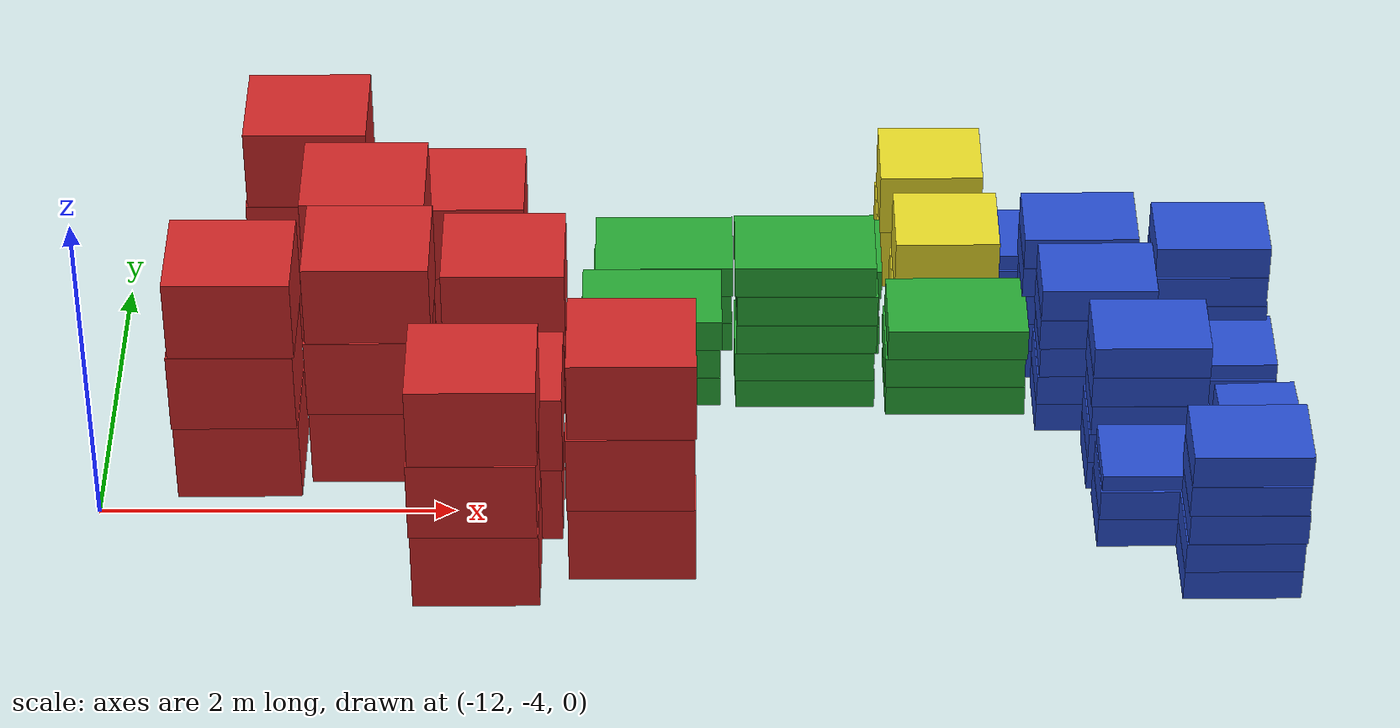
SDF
<sdf version="1.4">
 <model name="factory_baggage_group_B">
  <model name="baggage_A_x3_14">
   <model name="baggage_A_0">
    <static>1</static>
    <link name="link">
     <collision name="collision"><geometry><box><size>0.7 0.6 0.5</size></box></geometry></collision>
     <visual name="visual">
      <geometry><box><size>0.7 0.6 0.5</size></box></geometry>
      <material>
       <script><uri>file://media/materials/scripts/gazebo.material</uri><name>Gazebo/Red</name></script>
      </material>
     </visual>
    </link>
    <pose>0 0 0.25 0 -0 0</pose>
   </model>
   <model name="baggage_A_1">
    <static>1</static>
    <link name="link">
     <collision name="collision"><geometry><box><size>0.7 0.6 0.5</size></box></geometry></collision>
     <visual name="visual">
      <geometry><box><size>0.7 0.6 0.5</size></box></geometry>
      <material>
       <script><uri>file://media/materials/scripts/gazebo.material</uri><name>Gazebo/Red</name></script>
      </material>
     </visual>
    </link>
    <pose>-0.006 -0.0077 0.75 0 -0 0</pose>
   </model>
   <model name="baggage_A_2">
    <static>1</static>
    <link name="link">
     <collision name="collision"><geometry><box><size>0.7 0.6 0.5</size></box></geometry></collision>
     <visual name="visual">
      <geometry><box><size>0.7 0.6 0.5</size></box></geometry>
      <material>
       <script><uri>file://media/materials/scripts/gazebo.material</uri><name>Gazebo/Red</name></script>
      </material>
     </visual>
    </link>
    <pose>0.0045 0.0005 1.25 0 -0 0</pose>
   </model>
   <pose>-11.2173 -3.57429 0 0 -0 0</pose>
  </model>
  <model name="baggage_A_x3_15">
   <model name="baggage_A_0">
    <static>1</static>
    <link name="link">
     <collision name="collision"><geometry><box><size>0.7 0.6 0.5</size></box></geometry></collision>
     <visual name="visual">
      <geometry><box><size>0.7 0.6 0.5</size></box></geometry>
      <material>
       <script><uri>file://media/materials/scripts/gazebo.material</uri><name>Gazebo/Red</name></script>
      </material>
     </visual>
    </link>
    <pose>0 0 0.25 0 -0 0</pose>
   </model>
   <model name="baggage_A_1">
    <static>1</static>
    <link name="link">
     <collision name="collision"><geometry><box><size>0.7 0.6 0.5</size></box></geometry></collision>
     <visual name="visual">
      <geometry><box><size>0.7 0.6 0.5</size></box></geometry>
      <material>
       <script><uri>file://media/materials/scripts/gazebo.material</uri><name>Gazebo/Red</name></script>
      </material>
     </visual>
    </link>
    <pose>-0.006 -0.0077 0.75 0 -0 0</pose>
   </model>
   <model name="baggage_A_2">
    <static>1</static>
    <link name="link">
     <collision name="collision"><geometry><box><size>0.7 0.6 0.5</size></box></geometry></collision>
     <visual name="visual">
      <geometry><box><size>0.7 0.6 0.5</size></box></geometry>
      <material>
       <script><uri>file://media/materials/scripts/gazebo.material</uri><name>Gazebo/Red</name></script>
      </material>
     </visual>
    </link>
    <pose>0.0045 0.0005 1.25 0 -0 0</pose>
   </model>
   <pose>-10.4661 -3.4462 0 0 -0 0</pose>
  </model>
  <model name="baggage_A_x3_16">
   <model name="baggage_A_0">
    <static>1</static>
    <link name="link">
     <collision name="collision"><geometry><box><size>0.7 0.6 0.5</size></box></geometry></collision>
     <visual name="visual">
      <geometry><box><size>0.7 0.6 0.5</size></box></geometry>
      <material>
       <script><uri>file://media/materials/scripts/gazebo.material</uri><name>Gazebo/Red</name></script>
      </material>
     </visual>
    </link>
    <pose>0 0 0.25 0 -0 0</pose>
   </model>
   <model name="baggage_A_1">
    <static>1</static>
    <link name="link">
     <collision name="collision"><geometry><box><size>0.7 0.6 0.5</size></box></geometry></collision>
     <visual name="visual">
      <geometry><box><size>0.7 0.6 0.5</size></box></geometry>
      <material>
       <script><uri>file://media/materials/scripts/gazebo.material</uri><name>Gazebo/Red</name></script>
      </material>
     </visual>
    </link>
    <pose>-0.006 -0.0077 0.75 0 -0 0</pose>
   </model>
   <model name="baggage_A_2">
    <static>1</static>
    <link name="link">
     <collision name="collision"><geometry><box><size>0.7 0.6 0.5</size></box></geometry></collision>
     <visual name="visual">
      <geometry><box><size>0.7 0.6 0.5</size></box></geometry>
      <material>
       <script><uri>file://media/materials/scripts/gazebo.material</uri><name>Gazebo/Red</name></script>
      </material>
     </visual>
    </link>
    <pose>0.0045 0.0005 1.25 0 -0 0</pose>
   </model>
   <pose>-10.5135 -2.84667 0 0 -0 0</pose>
  </model>
  <model name="baggage_A_x3_17">
   <model name="baggage_A_0">
    <static>1</static>
    <link name="link">
     <collision name="collision"><geometry><box><size>0.7 0.6 0.5</size></box></geometry></collision>
     <visual name="visual">
      <geometry><box><size>0.7 0.6 0.5</size></box></geometry>
      <material>
       <script><uri>file://media/materials/scripts/gazebo.material</uri><name>Gazebo/Red</name></script>
      </material>
     </visual>
    </link>
    <pose>0 0 0.25 0 -0 0</pose>
   </model>
   <model name="baggage_A_1">
    <static>1</static>
    <link name="link">
     <collision name="collision"><geometry><box><size>0.7 0.6 0.5</size></box></geometry></collision>
     <visual name="visual">
      <geometry><box><size>0.7 0.6 0.5</size></box></geometry>
      <material>
       <script><uri>file://media/materials/scripts/gazebo.material</uri><name>Gazebo/Red</name></script>
      </material>
     </visual>
    </link>
    <pose>-0.006 -0.0077 0.75 0 -0 0</pose>
   </model>
   <model name="baggage_A_2">
    <static>1</static>
    <link name="link">
     <collision name="collision"><geometry><box><size>0.7 0.6 0.5</size></box></geometry></collision>
     <visual name="visual">
      <geometry><box><size>0.7 0.6 0.5</size></box></geometry>
      <material>
       <script><uri>file://media/materials/scripts/gazebo.material</uri><name>Gazebo/Red</name></script>
      </material>
     </visual>
    </link>
    <pose>0.0045 0.0005 1.25 0 -0 0</pose>
   </model>
   <pose>-10.8736 -2.1815 0 0 -0 0</pose>
  </model>
  <model name="baggage_A_x2_15">
   <model name="baggage_A_0">
    <static>1</static>
    <link name="link">
     <collision name="collision"><geometry><box><size>0.7 0.6 0.5</size></box></geometry></collision>
     <visual name="visual">
      <geometry><box><size>0.7 0.6 0.5</size></box></geometry>
      <material>
       <script><uri>file://media/materials/scripts/gazebo.material</uri><name>Gazebo/Red</name></script>
      </material>
     </visual>
    </link>
    <pose>0 0 0.25 0 -0 0</pose>
   </model>
   <model name="baggage_A_1">
    <static>1</static>
    <link name="link">
     <collision name="collision"><geometry><box><size>0.7 0.6 0.5</size></box></geometry></collision>
     <visual name="visual">
      <geometry><box><size>0.7 0.6 0.5</size></box></geometry>
      <material>
       <script><uri>file://media/materials/scripts/gazebo.material</uri><name>Gazebo/Red</name></script>
      </material>
     </visual>
    </link>
    <pose>0.0063 -0.0062 0.75 0 -0 0</pose>
   </model>
   <pose>-9.74487 -2.84389 0 0 -0 0</pose>
  </model>
  <model name="baggage_A_x2_16">
   <model name="baggage_A_0">
    <static>1</static>
    <link name="link">
     <collision name="collision"><geometry><box><size>0.7 0.6 0.5</size></box></geometry></collision>
     <visual name="visual">
      <geometry><box><size>0.7 0.6 0.5</size></box></geometry>
      <material>
       <script><uri>file://media/materials/scripts/gazebo.material</uri><name>Gazebo/Red</name></script>
      </material>
     </visual>
    </link>
    <pose>0 0 0.25 0 -0 0</pose>
   </model>
   <model name="baggage_A_1">
    <static>1</static>
    <link name="link">
     <collision name="collision"><geometry><box><size>0.7 0.6 0.5</size></box></geometry></collision>
     <visual name="visual">
      <geometry><box><size>0.7 0.6 0.5</size></box></geometry>
      <material>
       <script><uri>file://media/materials/scripts/gazebo.material</uri><name>Gazebo/Red</name></script>
      </material>
     </visual>
    </link>
    <pose>0.0063 -0.0062 0.75 0 -0 0</pose>
   </model>
   <pose>-9.98737 -2.21622 0 0 -0 0</pose>
  </model>
  <model name="baggage_D_x3_15">
   <model name="baggage_D_0">
    <static>1</static>
    <link name="link">
     <collision name="collision"><geometry><box><size>0.8 0.5 0.2</size></box></geometry></collision>
     <visual name="visual">
      <geometry><box><size>0.8 0.5 0.2</size></box></geometry>
      <material>
       <script><uri>file://media/materials/scripts/gazebo.material</uri><name>Gazebo/Green</name></script>
      </material>
     </visual>
    </link>
    <pose>0 0 0.1 0 -0 0</pose>
   </model>
   <model name="baggage_D_1">
    <static>1</static>
    <link name="link">
     <collision name="collision"><geometry><box><size>0.8 0.5 0.2</size></box></geometry></collision>
     <visual name="visual">
      <geometry><box><size>0.8 0.5 0.2</size></box></geometry>
      <material>
       <script><uri>file://media/materials/scripts/gazebo.material</uri><name>Gazebo/Green</name></script>
      </material>
     </visual>
    </link>
    <pose>-0.0056 0.0083 0.3 0 -0 0</pose>
   </model>
   <model name="baggage_D_2">
    <static>1</static>
    <link name="link">
     <collision name="collision"><geometry><box><size>0.8 0.5 0.2</size></box></geometry></collision>
     <visual name="visual">
      <geometry><box><size>0.8 0.5 0.2</size></box></geometry>
      <material>
       <script><uri>file://media/materials/scripts/gazebo.material</uri><name>Gazebo/Green</name></script>
      </material>
     </visual>
    </link>
    <pose>0.0053 0.0057 0.5 0 -0 0</pose>
   </model>
   <pose>-8.83234 -2.31719 0 0 -0 0</pose>
  </model>
  <model name="baggage_D_x3_16">
   <model name="baggage_D_0">
    <static>1</static>
    <link name="link">
     <collision name="collision"><geometry><box><size>0.8 0.5 0.2</size></box></geometry></collision>
     <visual name="visual">
      <geometry><box><size>0.8 0.5 0.2</size></box></geometry>
      <material>
       <script><uri>file://media/materials/scripts/gazebo.material</uri><name>Gazebo/Green</name></script>
      </material>
     </visual>
    </link>
    <pose>0 0 0.1 0 -0 0</pose>
   </model>
   <model name="baggage_D_1">
    <static>1</static>
    <link name="link">
     <collision name="collision"><geometry><box><size>0.8 0.5 0.2</size></box></geometry></collision>
     <visual name="visual">
      <geometry><box><size>0.8 0.5 0.2</size></box></geometry>
      <material>
       <script><uri>file://media/materials/scripts/gazebo.material</uri><name>Gazebo/Green</name></script>
      </material>
     </visual>
    </link>
    <pose>-0.0056 0.0083 0.3 0 -0 0</pose>
   </model>
   <model name="baggage_D_2">
    <static>1</static>
    <link name="link">
     <collision name="collision"><geometry><box><size>0.8 0.5 0.2</size></box></geometry></collision>
     <visual name="visual">
      <geometry><box><size>0.8 0.5 0.2</size></box></geometry>
      <material>
       <script><uri>file://media/materials/scripts/gazebo.material</uri><name>Gazebo/Green</name></script>
      </material>
     </visual>
    </link>
    <pose>0.0053 0.0057 0.5 0 -0 0</pose>
   </model>
   <pose>-8.90179 -2.8215 0 0 -0 0</pose>
  </model>
  <model name="baggage_D_x3_17">
   <model name="baggage_D_0">
    <static>1</static>
    <link name="link">
     <collision name="collision"><geometry><box><size>0.8 0.5 0.2</size></box></geometry></collision>
     <visual name="visual">
      <geometry><box><size>0.8 0.5 0.2</size></box></geometry>
      <material>
       <script><uri>file://media/materials/scripts/gazebo.material</uri><name>Gazebo/Green</name></script>
      </material>
     </visual>
    </link>
    <pose>0 0 0.1 0 -0 0</pose>
   </model>
   <model name="baggage_D_1">
    <static>1</static>
    <link name="link">
     <collision name="collision"><geometry><box><size>0.8 0.5 0.2</size></box></geometry></collision>
     <visual name="visual">
      <geometry><box><size>0.8 0.5 0.2</size></box></geometry>
      <material>
       <script><uri>file://media/materials/scripts/gazebo.material</uri><name>Gazebo/Green</name></script>
      </material>
     </visual>
    </link>
    <pose>-0.0056 0.0083 0.3 0 -0 0</pose>
   </model>
   <model name="baggage_D_2">
    <static>1</static>
    <link name="link">
     <collision name="collision"><geometry><box><size>0.8 0.5 0.2</size></box></geometry></collision>
     <visual name="visual">
      <geometry><box><size>0.8 0.5 0.2</size></box></geometry>
      <material>
       <script><uri>file://media/materials/scripts/gazebo.material</uri><name>Gazebo/Green</name></script>
      </material>
     </visual>
    </link>
    <pose>0.0053 0.0057 0.5 0 -0 0</pose>
   </model>
   <pose>-7.97113 -2.34828 0 0 -0 0</pose>
  </model>
  <model name="baggage_D_x5_14">
   <model name="baggage_D_0">
    <static>1</static>
    <link name="link">
     <collision name="collision"><geometry><box><size>0.8 0.5 0.2</size></box></geometry></collision>
     <visual name="visual">
      <geometry><box><size>0.8 0.5 0.2</size></box></geometry>
      <material>
       <script><uri>file://media/materials/scripts/gazebo.material</uri><name>Gazebo/Green</name></script>
      </material>
     </visual>
    </link>
    <pose>0 0 0.1 0 -0 0</pose>
   </model>
   <model name="baggage_D_1">
    <static>1</static>
    <link name="link">
     <collision name="collision"><geometry><box><size>0.8 0.5 0.2</size></box></geometry></collision>
     <visual name="visual">
      <geometry><box><size>0.8 0.5 0.2</size></box></geometry>
      <material>
       <script><uri>file://media/materials/scripts/gazebo.material</uri><name>Gazebo/Green</name></script>
      </material>
     </visual>
    </link>
    <pose>-0.0065 -0.0092 0.3 0 -0 0</pose>
   </model>
   <model name="baggage_D_2">
    <static>1</static>
    <link name="link">
     <collision name="collision"><geometry><box><size>0.8 0.5 0.2</size></box></geometry></collision>
     <visual name="visual">
      <geometry><box><size>0.8 0.5 0.2</size></box></geometry>
      <material>
       <script><uri>file://media/materials/scripts/gazebo.material</uri><name>Gazebo/Green</name></script>
      </material>
     </visual>
    </link>
    <pose>0.005 -0.0052 0.5 0 -0 0</pose>
   </model>
   <model name="baggage_D_3">
    <static>1</static>
    <link name="link">
     <collision name="collision"><geometry><box><size>0.8 0.5 0.2</size></box></geometry></collision>
     <visual name="visual">
      <geometry><box><size>0.8 0.5 0.2</size></box></geometry>
      <material>
       <script><uri>file://media/materials/scripts/gazebo.material</uri><name>Gazebo/Green</name></script>
      </material>
     </visual>
    </link>
    <pose>0.0074 0.0002 0.7 0 -0 0</pose>
   </model>
   <model name="baggage_D_4">
    <static>1</static>
    <link name="link">
     <collision name="collision"><geometry><box><size>0.8 0.5 0.2</size></box></geometry></collision>
     <visual name="visual">
      <geometry><box><size>0.8 0.5 0.2</size></box></geometry>
      <material>
       <script><uri>file://media/materials/scripts/gazebo.material</uri><name>Gazebo/Green</name></script>
      </material>
     </visual>
    </link>
    <pose>-0.006 0.0081 0.9 0 -0 0</pose>
   </model>
   <pose>-8.01706 -2.8393 0 0 -0 0</pose>
  </model>
  <model name="baggage_D_x3_18">
   <model name="baggage_D_0">
    <static>1</static>
    <link name="link">
     <collision name="collision"><geometry><box><size>0.8 0.5 0.2</size></box></geometry></collision>
     <visual name="visual">
      <geometry><box><size>0.8 0.5 0.2</size></box></geometry>
      <material>
       <script><uri>file://media/materials/scripts/gazebo.material</uri><name>Gazebo/Green</name></script>
      </material>
     </visual>
    </link>
    <pose>0 0 0.1 0 -0 0</pose>
   </model>
   <model name="baggage_D_1">
    <static>1</static>
    <link name="link">
     <collision name="collision"><geometry><box><size>0.8 0.5 0.2</size></box></geometry></collision>
     <visual name="visual">
      <geometry><box><size>0.8 0.5 0.2</size></box></geometry>
      <material>
       <script><uri>file://media/materials/scripts/gazebo.material</uri><name>Gazebo/Green</name></script>
      </material>
     </visual>
    </link>
    <pose>-0.0056 0.0083 0.3 0 -0 0</pose>
   </model>
   <model name="baggage_D_2">
    <static>1</static>
    <link name="link">
     <collision name="collision"><geometry><box><size>0.8 0.5 0.2</size></box></geometry></collision>
     <visual name="visual">
      <geometry><box><size>0.8 0.5 0.2</size></box></geometry>
      <material>
       <script><uri>file://media/materials/scripts/gazebo.material</uri><name>Gazebo/Green</name></script>
      </material>
     </visual>
    </link>
    <pose>0.0053 0.0057 0.5 0 -0 0</pose>
   </model>
   <pose>-7.15437 -2.91181 0 0 -0 0</pose>
  </model>
  <model name="baggage_C_x2_26">
   <model name="baggage_C_0">
    <static>1</static>
    <link name="link">
     <collision name="collision"><geometry><box><size>0.6 0.5 0.4</size></box></geometry></collision>
     <visual name="visual">
      <geometry><box><size>0.6 0.5 0.4</size></box></geometry>
      <material>
       <script><uri>file://media/materials/scripts/gazebo.material</uri><name>Gazebo/Yellow</name></script>
      </material>
     </visual>
    </link>
    <pose>0 0 0.2 0 -0 0</pose>
   </model>
   <model name="baggage_C_1">
    <static>1</static>
    <link name="link">
     <collision name="collision"><geometry><box><size>0.6 0.5 0.4</size></box></geometry></collision>
     <visual name="visual">
      <geometry><box><size>0.6 0.5 0.4</size></box></geometry>
      <material>
       <script><uri>file://media/materials/scripts/gazebo.material</uri><name>Gazebo/Yellow</name></script>
      </material>
     </visual>
    </link>
    <pose>0.0093 -0.002 0.6 0 -0 0</pose>
   </model>
   <pose>-7.19994 -2.34772 0 0 -0 0</pose>
  </model>
  <model name="baggage_B_x3_17">
   <model name="baggage_B_0">
    <static>1</static>
    <link name="link">
     <collision name="collision"><geometry><box><size>0.65 0.45 0.2</size></box></geometry></collision>
     <visual name="visual">
      <geometry><box><size>0.65 0.45 0.2</size></box></geometry>
      <material>
       <script><uri>file://media/materials/scripts/gazebo.material</uri><name>Gazebo/Blue</name></script>
      </material>
     </visual>
    </link>
    <pose>0 0 0.1 0 -0 0</pose>
   </model>
   <model name="baggage_B_1">
    <static>1</static>
    <link name="link">
     <collision name="collision"><geometry><box><size>0.65 0.45 0.2</size></box></geometry></collision>
     <visual name="visual">
      <geometry><box><size>0.65 0.45 0.2</size></box></geometry>
      <material>
       <script><uri>file://media/materials/scripts/gazebo.material</uri><name>Gazebo/Blue</name></script>
      </material>
     </visual>
    </link>
    <pose>0.0028 -0.0086 0.3 0 -0 0</pose>
   </model>
   <model name="baggage_B_2">
    <static>1</static>
    <link name="link">
     <collision name="collision"><geometry><box><size>0.65 0.45 0.2</size></box></geometry></collision>
     <visual name="visual">
      <geometry><box><size>0.65 0.45 0.2</size></box></geometry>
      <material>
       <script><uri>file://media/materials/scripts/gazebo.material</uri><name>Gazebo/Blue</name></script>
      </material>
     </visual>
    </link>
    <pose>0.0092 0.006 0.4 0 -0 0</pose>
   </model>
   <pose>-6.57072 -2.09615 0 0 -0 0</pose>
  </model>
  <model name="baggage_B_x5_17">
   <model name="baggage_B_0">
    <static>1</static>
    <link name="link">
     <collision name="collision"><geometry><box><size>0.65 0.45 0.2</size></box></geometry></collision>
     <visual name="visual">
      <geometry><box><size>0.65 0.45 0.2</size></box></geometry>
      <material>
       <script><uri>file://media/materials/scripts/gazebo.material</uri><name>Gazebo/Blue</name></script>
      </material>
     </visual>
    </link>
    <pose>0 0 0.1 0 -0 0</pose>
   </model>
   <model name="baggage_B_1">
    <static>1</static>
    <link name="link">
     <collision name="collision"><geometry><box><size>0.65 0.45 0.2</size></box></geometry></collision>
     <visual name="visual">
      <geometry><box><size>0.65 0.45 0.2</size></box></geometry>
      <material>
       <script><uri>file://media/materials/scripts/gazebo.material</uri><name>Gazebo/Blue</name></script>
      </material>
     </visual>
    </link>
    <pose>-0.0014 -0.0091 0.3 0 -0 0</pose>
   </model>
   <model name="baggage_B_2">
    <static>1</static>
    <link name="link">
     <collision name="collision"><geometry><box><size>0.65 0.45 0.2</size></box></geometry></collision>
     <visual name="visual">
      <geometry><box><size>0.65 0.45 0.2</size></box></geometry>
      <material>
       <script><uri>file://media/materials/scripts/gazebo.material</uri><name>Gazebo/Blue</name></script>
      </material>
     </visual>
    </link>
    <pose>0.0076 -0.0066 0.5 0 -0 0</pose>
   </model>
   <model name="baggage_B_3">
    <static>1</static>
    <link name="link">
     <collision name="collision"><geometry><box><size>0.65 0.45 0.2</size></box></geometry></collision>
     <visual name="visual">
      <geometry><box><size>0.65 0.45 0.2</size></box></geometry>
      <material>
       <script><uri>file://media/materials/scripts/gazebo.material</uri><name>Gazebo/Blue</name></script>
      </material>
     </visual>
    </link>
    <pose>0 -0.0032 0.7 0 -0 0</pose>
   </model>
   <model name="baggage_B_4">
    <static>1</static>
    <link name="link">
     <collision name="collision"><geometry><box><size>0.65 0.45 0.2</size></box></geometry></collision>
     <visual name="visual">
      <geometry><box><size>0.65 0.45 0.2</size></box></geometry>
      <material>
       <script><uri>file://media/materials/scripts/gazebo.material</uri><name>Gazebo/Blue</name></script>
      </material>
     </visual>
    </link>
    <pose>0.0023 0.0073 0.9 0 -0 0</pose>
   </model>
   <pose>-6.44622 -2.60086 0 0 -0 0</pose>
  </model>
  <model name="baggage_B_x5_18">
   <model name="baggage_B_0">
    <static>1</static>
    <link name="link">
     <collision name="collision"><geometry><box><size>0.65 0.45 0.2</size></box></geometry></collision>
     <visual name="visual">
      <geometry><box><size>0.65 0.45 0.2</size></box></geometry>
      <material>
       <script><uri>file://media/materials/scripts/gazebo.material</uri><name>Gazebo/Blue</name></script>
      </material>
     </visual>
    </link>
    <pose>0 0 0.1 0 -0 0</pose>
   </model>
   <model name="baggage_B_1">
    <static>1</static>
    <link name="link">
     <collision name="collision"><geometry><box><size>0.65 0.45 0.2</size></box></geometry></collision>
     <visual name="visual">
      <geometry><box><size>0.65 0.45 0.2</size></box></geometry>
      <material>
       <script><uri>file://media/materials/scripts/gazebo.material</uri><name>Gazebo/Blue</name></script>
      </material>
     </visual>
    </link>
    <pose>-0.0014 -0.0091 0.3 0 -0 0</pose>
   </model>
   <model name="baggage_B_2">
    <static>1</static>
    <link name="link">
     <collision name="collision"><geometry><box><size>0.65 0.45 0.2</size></box></geometry></collision>
     <visual name="visual">
      <geometry><box><size>0.65 0.45 0.2</size></box></geometry>
      <material>
       <script><uri>file://media/materials/scripts/gazebo.material</uri><name>Gazebo/Blue</name></script>
      </material>
     </visual>
    </link>
    <pose>0.0076 -0.0066 0.5 0 -0 0</pose>
   </model>
   <model name="baggage_B_3">
    <static>1</static>
    <link name="link">
     <collision name="collision"><geometry><box><size>0.65 0.45 0.2</size></box></geometry></collision>
     <visual name="visual">
      <geometry><box><size>0.65 0.45 0.2</size></box></geometry>
      <material>
       <script><uri>file://media/materials/scripts/gazebo.material</uri><name>Gazebo/Blue</name></script>
      </material>
     </visual>
    </link>
    <pose>0 -0.0032 0.7 0 -0 0</pose>
   </model>
   <model name="baggage_B_4">
    <static>1</static>
    <link name="link">
     <collision name="collision"><geometry><box><size>0.65 0.45 0.2</size></box></geometry></collision>
     <visual name="visual">
      <geometry><box><size>0.65 0.45 0.2</size></box></geometry>
      <material>
       <script><uri>file://media/materials/scripts/gazebo.material</uri><name>Gazebo/Blue</name></script>
      </material>
     </visual>
    </link>
    <pose>0.0023 0.0073 0.9 0 -0 0</pose>
   </model>
   <pose>-6.37626 -3.08221 0 0 -0 0</pose>
  </model>
  <model name="baggage_B_x5_19">
   <model name="baggage_B_0">
    <static>1</static>
    <link name="link">
     <collision name="collision"><geometry><box><size>0.65 0.45 0.2</size></box></geometry></collision>
     <visual name="visual">
      <geometry><box><size>0.65 0.45 0.2</size></box></geometry>
      <material>
       <script><uri>file://media/materials/scripts/gazebo.material</uri><name>Gazebo/Blue</name></script>
      </material>
     </visual>
    </link>
    <pose>0 0 0.1 0 -0 0</pose>
   </model>
   <model name="baggage_B_1">
    <static>1</static>
    <link name="link">
     <collision name="collision"><geometry><box><size>0.65 0.45 0.2</size></box></geometry></collision>
     <visual name="visual">
      <geometry><box><size>0.65 0.45 0.2</size></box></geometry>
      <material>
       <script><uri>file://media/materials/scripts/gazebo.material</uri><name>Gazebo/Blue</name></script>
      </material>
     </visual>
    </link>
    <pose>-0.0014 -0.0091 0.3 0 -0 0</pose>
   </model>
   <model name="baggage_B_2">
    <static>1</static>
    <link name="link">
     <collision name="collision"><geometry><box><size>0.65 0.45 0.2</size></box></geometry></collision>
     <visual name="visual">
      <geometry><box><size>0.65 0.45 0.2</size></box></geometry>
      <material>
       <script><uri>file://media/materials/scripts/gazebo.material</uri><name>Gazebo/Blue</name></script>
      </material>
     </visual>
    </link>
    <pose>0.0076 -0.0066 0.5 0 -0 0</pose>
   </model>
   <model name="baggage_B_3">
    <static>1</static>
    <link name="link">
     <collision name="collision"><geometry><box><size>0.65 0.45 0.2</size></box></geometry></collision>
     <visual name="visual">
      <geometry><box><size>0.65 0.45 0.2</size></box></geometry>
      <material>
       <script><uri>file://media/materials/scripts/gazebo.material</uri><name>Gazebo/Blue</name></script>
      </material>
     </visual>
    </link>
    <pose>0 -0.0032 0.7 0 -0 0</pose>
   </model>
   <model name="baggage_B_4">
    <static>1</static>
    <link name="link">
     <collision name="collision"><geometry><box><size>0.65 0.45 0.2</size></box></geometry></collision>
     <visual name="visual">
      <geometry><box><size>0.65 0.45 0.2</size></box></geometry>
      <material>
       <script><uri>file://media/materials/scripts/gazebo.material</uri><name>Gazebo/Blue</name></script>
      </material>
     </visual>
    </link>
    <pose>0.0023 0.0073 0.9 0 -0 0</pose>
   </model>
   <pose>-6.11873 -3.59902 0 0 -0 0</pose>
  </model>
  <model name="baggage_B_x3_18">
   <model name="baggage_B_0">
    <static>1</static>
    <link name="link">
     <collision name="collision"><geometry><box><size>0.65 0.45 0.2</size></box></geometry></collision>
     <visual name="visual">
      <geometry><box><size>0.65 0.45 0.2</size></box></geometry>
      <material>
       <script><uri>file://media/materials/scripts/gazebo.material</uri><name>Gazebo/Blue</name></script>
      </material>
     </visual>
    </link>
    <pose>0 0 0.1 0 -0 0</pose>
   </model>
   <model name="baggage_B_1">
    <static>1</static>
    <link name="link">
     <collision name="collision"><geometry><box><size>0.65 0.45 0.2</size></box></geometry></collision>
     <visual name="visual">
      <geometry><box><size>0.65 0.45 0.2</size></box></geometry>
      <material>
       <script><uri>file://media/materials/scripts/gazebo.material</uri><name>Gazebo/Blue</name></script>
      </material>
     </visual>
    </link>
    <pose>0.0028 -0.0086 0.3 0 -0 0</pose>
   </model>
   <model name="baggage_B_2">
    <static>1</static>
    <link name="link">
     <collision name="collision"><geometry><box><size>0.65 0.45 0.2</size></box></geometry></collision>
     <visual name="visual">
      <geometry><box><size>0.65 0.45 0.2</size></box></geometry>
      <material>
       <script><uri>file://media/materials/scripts/gazebo.material</uri><name>Gazebo/Blue</name></script>
      </material>
     </visual>
    </link>
    <pose>0.0092 0.006 0.4 0 -0 0</pose>
   </model>
   <pose>-6.09215 -4.09717 0 0 -0 0</pose>
  </model>
  <model name="baggage_B_x5_20">
   <model name="baggage_B_0">
    <static>1</static>
    <link name="link">
     <collision name="collision"><geometry><box><size>0.65 0.45 0.2</size></box></geometry></collision>
     <visual name="visual">
      <geometry><box><size>0.65 0.45 0.2</size></box></geometry>
      <material>
       <script><uri>file://media/materials/scripts/gazebo.material</uri><name>Gazebo/Blue</name></script>
      </material>
     </visual>
    </link>
    <pose>0 0 0.1 0 -0 0</pose>
   </model>
   <model name="baggage_B_1">
    <static>1</static>
    <link name="link">
     <collision name="collision"><geometry><box><size>0.65 0.45 0.2</size></box></geometry></collision>
     <visual name="visual">
      <geometry><box><size>0.65 0.45 0.2</size></box></geometry>
      <material>
       <script><uri>file://media/materials/scripts/gazebo.material</uri><name>Gazebo/Blue</name></script>
      </material>
     </visual>
    </link>
    <pose>-0.0014 -0.0091 0.3 0 -0 0</pose>
   </model>
   <model name="baggage_B_2">
    <static>1</static>
    <link name="link">
     <collision name="collision"><geometry><box><size>0.65 0.45 0.2</size></box></geometry></collision>
     <visual name="visual">
      <geometry><box><size>0.65 0.45 0.2</size></box></geometry>
      <material>
       <script><uri>file://media/materials/scripts/gazebo.material</uri><name>Gazebo/Blue</name></script>
      </material>
     </visual>
    </link>
    <pose>0.0076 -0.0066 0.5 0 -0 0</pose>
   </model>
   <model name="baggage_B_3">
    <static>1</static>
    <link name="link">
     <collision name="collision"><geometry><box><size>0.65 0.45 0.2</size></box></geometry></collision>
     <visual name="visual">
      <geometry><box><size>0.65 0.45 0.2</size></box></geometry>
      <material>
       <script><uri>file://media/materials/scripts/gazebo.material</uri><name>Gazebo/Blue</name></script>
      </material>
     </visual>
    </link>
    <pose>0 -0.0032 0.7 0 -0 0</pose>
   </model>
   <model name="baggage_B_4">
    <static>1</static>
    <link name="link">
     <collision name="collision"><geometry><box><size>0.65 0.45 0.2</size></box></geometry></collision>
     <visual name="visual">
      <geometry><box><size>0.65 0.45 0.2</size></box></geometry>
      <material>
       <script><uri>file://media/materials/scripts/gazebo.material</uri><name>Gazebo/Blue</name></script>
      </material>
     </visual>
    </link>
    <pose>0.0023 0.0073 0.9 0 -0 0</pose>
   </model>
   <pose>-5.65095 -4.53699 0 0 -0 0</pose>
  </model>
  <model name="baggage_B_x3_19">
   <model name="baggage_B_0">
    <static>1</static>
    <link name="link">
     <collision name="collision"><geometry><box><size>0.65 0.45 0.2</size></box></geometry></collision>
     <visual name="visual">
      <geometry><box><size>0.65 0.45 0.2</size></box></geometry>
      <material>
       <script><uri>file://media/materials/scripts/gazebo.material</uri><name>Gazebo/Blue</name></script>
      </material>
     </visual>
    </link>
    <pose>0 0 0.1 0 -0 0</pose>
   </model>
   <model name="baggage_B_1">
    <static>1</static>
    <link name="link">
     <collision name="collision"><geometry><box><size>0.65 0.45 0.2</size></box></geometry></collision>
     <visual name="visual">
      <geometry><box><size>0.65 0.45 0.2</size></box></geometry>
      <material>
       <script><uri>file://media/materials/scripts/gazebo.material</uri><name>Gazebo/Blue</name></script>
      </material>
     </visual>
    </link>
    <pose>0.0028 -0.0086 0.3 0 -0 0</pose>
   </model>
   <model name="baggage_B_2">
    <static>1</static>
    <link name="link">
     <collision name="collision"><geometry><box><size>0.65 0.45 0.2</size></box></geometry></collision>
     <visual name="visual">
      <geometry><box><size>0.65 0.45 0.2</size></box></geometry>
      <material>
       <script><uri>file://media/materials/scripts/gazebo.material</uri><name>Gazebo/Blue</name></script>
      </material>
     </visual>
    </link>
    <pose>0.0092 0.006 0.4 0 -0 0</pose>
   </model>
   <pose>-5.476729 -3.833027 0 0 -0 1.609199</pose>
  </model>
  <model name="baggage_B_x3_20">
   <model name="baggage_B_0">
    <static>1</static>
    <link name="link">
     <collision name="collision"><geometry><box><size>0.65 0.45 0.2</size></box></geometry></collision>
     <visual name="visual">
      <geometry><box><size>0.65 0.45 0.2</size></box></geometry>
      <material>
       <script><uri>file://media/materials/scripts/gazebo.material</uri><name>Gazebo/Blue</name></script>
      </material>
     </visual>
    </link>
    <pose>0 0 0.1 0 -0 0</pose>
   </model>
   <model name="baggage_B_1">
    <static>1</static>
    <link name="link">
     <collision name="collision"><geometry><box><size>0.65 0.45 0.2</size></box></geometry></collision>
     <visual name="visual">
      <geometry><box><size>0.65 0.45 0.2</size></box></geometry>
      <material>
       <script><uri>file://media/materials/scripts/gazebo.material</uri><name>Gazebo/Blue</name></script>
      </material>
     </visual>
    </link>
    <pose>0.0028 -0.0086 0.3 0 -0 0</pose>
   </model>
   <model name="baggage_B_2">
    <static>1</static>
    <link name="link">
     <collision name="collision"><geometry><box><size>0.65 0.45 0.2</size></box></geometry></collision>
     <visual name="visual">
      <geometry><box><size>0.65 0.45 0.2</size></box></geometry>
      <material>
       <script><uri>file://media/materials/scripts/gazebo.material</uri><name>Gazebo/Blue</name></script>
      </material>
     </visual>
    </link>
    <pose>0.0092 0.006 0.4 0 -0 0</pose>
   </model>
   <pose>-5.67915 -3.12023 0 0 -0 0</pose>
  </model>
  <model name="baggage_B_x5_21">
   <model name="baggage_B_0">
    <static>1</static>
    <link name="link">
     <collision name="collision"><geometry><box><size>0.65 0.45 0.2</size></box></geometry></collision>
     <visual name="visual">
      <geometry><box><size>0.65 0.45 0.2</size></box></geometry>
      <material>
       <script><uri>file://media/materials/scripts/gazebo.material</uri><name>Gazebo/Blue</name></script>
      </material>
     </visual>
    </link>
    <pose>0 0 0.1 0 -0 0</pose>
   </model>
   <model name="baggage_B_1">
    <static>1</static>
    <link name="link">
     <collision name="collision"><geometry><box><size>0.65 0.45 0.2</size></box></geometry></collision>
     <visual name="visual">
      <geometry><box><size>0.65 0.45 0.2</size></box></geometry>
      <material>
       <script><uri>file://media/materials/scripts/gazebo.material</uri><name>Gazebo/Blue</name></script>
      </material>
     </visual>
    </link>
    <pose>-0.0014 -0.0091 0.3 0 -0 0</pose>
   </model>
   <model name="baggage_B_2">
    <static>1</static>
    <link name="link">
     <collision name="collision"><geometry><box><size>0.65 0.45 0.2</size></box></geometry></collision>
     <visual name="visual">
      <geometry><box><size>0.65 0.45 0.2</size></box></geometry>
      <material>
       <script><uri>file://media/materials/scripts/gazebo.material</uri><name>Gazebo/Blue</name></script>
      </material>
     </visual>
    </link>
    <pose>0.0076 -0.0066 0.5 0 -0 0</pose>
   </model>
   <model name="baggage_B_3">
    <static>1</static>
    <link name="link">
     <collision name="collision"><geometry><box><size>0.65 0.45 0.2</size></box></geometry></collision>
     <visual name="visual">
      <geometry><box><size>0.65 0.45 0.2</size></box></geometry>
      <material>
       <script><uri>file://media/materials/scripts/gazebo.material</uri><name>Gazebo/Blue</name></script>
      </material>
     </visual>
    </link>
    <pose>0 -0.0032 0.7 0 -0 0</pose>
   </model>
   <model name="baggage_B_4">
    <static>1</static>
    <link name="link">
     <collision name="collision"><geometry><box><size>0.65 0.45 0.2</size></box></geometry></collision>
     <visual name="visual">
      <geometry><box><size>0.65 0.45 0.2</size></box></geometry>
      <material>
       <script><uri>file://media/materials/scripts/gazebo.material</uri><name>Gazebo/Blue</name></script>
      </material>
     </visual>
    </link>
    <pose>0.0023 0.0073 0.9 0 -0 0</pose>
   </model>
   <pose>-5.70179 -2.69477 0 0 -0 0</pose>
  </model>
  <model name="baggage_A_x2_18">
   <model name="baggage_A_0">
    <static>1</static>
    <link name="link">
     <collision name="collision"><geometry><box><size>0.7 0.6 0.5</size></box></geometry></collision>
     <visual name="visual">
      <geometry><box><size>0.7 0.6 0.5</size></box></geometry>
      <material>
       <script><uri>file://media/materials/scripts/gazebo.material</uri><name>Gazebo/Red</name></script>
      </material>
     </visual>
    </link>
    <pose>0 0 0.25 0 -0 0</pose>
   </model>
   <model name="baggage_A_1">
    <static>1</static>
    <link name="link">
     <collision name="collision"><geometry><box><size>0.7 0.6 0.5</size></box></geometry></collision>
     <visual name="visual">
      <geometry><box><size>0.7 0.6 0.5</size></box></geometry>
      <material>
       <script><uri>file://media/materials/scripts/gazebo.material</uri><name>Gazebo/Red</name></script>
      </material>
     </visual>
    </link>
    <pose>0.0063 -0.0062 0.75 0 -0 0</pose>
   </model>
   <pose>-9.73963 -3.94644 0 0 -0 0</pose>
  </model>
  <model name="baggage_A_x3_19">
   <model name="baggage_A_0">
    <static>1</static>
    <link name="link">
     <collision name="collision"><geometry><box><size>0.7 0.6 0.5</size></box></geometry></collision>
     <visual name="visual">
      <geometry><box><size>0.7 0.6 0.5</size></box></geometry>
      <material>
       <script><uri>file://media/materials/scripts/gazebo.material</uri><name>Gazebo/Red</name></script>
      </material>
     </visual>
    </link>
    <pose>0 0 0.25 0 -0 0</pose>
   </model>
   <model name="baggage_A_1">
    <static>1</static>
    <link name="link">
     <collision name="collision"><geometry><box><size>0.7 0.6 0.5</size></box></geometry></collision>
     <visual name="visual">
      <geometry><box><size>0.7 0.6 0.5</size></box></geometry>
      <material>
       <script><uri>file://media/materials/scripts/gazebo.material</uri><name>Gazebo/Red</name></script>
      </material>
     </visual>
    </link>
    <pose>-0.006 -0.0077 0.75 0 -0 0</pose>
   </model>
   <model name="baggage_A_2">
    <static>1</static>
    <link name="link">
     <collision name="collision"><geometry><box><size>0.7 0.6 0.5</size></box></geometry></collision>
     <visual name="visual">
      <geometry><box><size>0.7 0.6 0.5</size></box></geometry>
      <material>
       <script><uri>file://media/materials/scripts/gazebo.material</uri><name>Gazebo/Red</name></script>
      </material>
     </visual>
    </link>
    <pose>0.0045 0.0005 1.25 0 -0 0</pose>
   </model>
   <pose>-9.85525 -4.50574 0 0 -0 0</pose>
  </model>
  <model name="baggage_A_x3_20">
   <model name="baggage_A_0">
    <static>1</static>
    <link name="link">
     <collision name="collision"><geometry><box><size>0.7 0.6 0.5</size></box></geometry></collision>
     <visual name="visual">
      <geometry><box><size>0.7 0.6 0.5</size></box></geometry>
      <material>
       <script><uri>file://media/materials/scripts/gazebo.material</uri><name>Gazebo/Red</name></script>
      </material>
     </visual>
    </link>
    <pose>0 0 0.25 0 -0 0</pose>
   </model>
   <model name="baggage_A_1">
    <static>1</static>
    <link name="link">
     <collision name="collision"><geometry><box><size>0.7 0.6 0.5</size></box></geometry></collision>
     <visual name="visual">
      <geometry><box><size>0.7 0.6 0.5</size></box></geometry>
      <material>
       <script><uri>file://media/materials/scripts/gazebo.material</uri><name>Gazebo/Red</name></script>
      </material>
     </visual>
    </link>
    <pose>-0.006 -0.0077 0.75 0 -0 0</pose>
   </model>
   <model name="baggage_A_2">
    <static>1</static>
    <link name="link">
     <collision name="collision"><geometry><box><size>0.7 0.6 0.5</size></box></geometry></collision>
     <visual name="visual">
      <geometry><box><size>0.7 0.6 0.5</size></box></geometry>
      <material>
       <script><uri>file://media/materials/scripts/gazebo.material</uri><name>Gazebo/Red</name></script>
      </material>
     </visual>
    </link>
    <pose>0.0045 0.0005 1.25 0 -0 0</pose>
   </model>
   <pose>-9.00067 -4.28892 0 0 -0 0</pose>
  </model>
  <model name="baggage_C_x2_30">
   <model name="baggage_C_0">
    <static>1</static>
    <link name="link">
     <collision name="collision"><geometry><box><size>0.6 0.5 0.4</size></box></geometry></collision>
     <visual name="visual">
      <geometry><box><size>0.6 0.5 0.4</size></box></geometry>
      <material>
       <script><uri>file://media/materials/scripts/gazebo.material</uri><name>Gazebo/Yellow</name></script>
      </material>
     </visual>
    </link>
    <pose>0 0 0.2 0 -0 0</pose>
   </model>
   <model name="baggage_C_1">
    <static>1</static>
    <link name="link">
     <collision name="collision"><geometry><box><size>0.6 0.5 0.4</size></box></geometry></collision>
     <visual name="visual">
      <geometry><box><size>0.6 0.5 0.4</size></box></geometry>
      <material>
       <script><uri>file://media/materials/scripts/gazebo.material</uri><name>Gazebo/Yellow</name></script>
      </material>
     </visual>
    </link>
    <pose>0.0093 -0.002 0.6 0 -0 0</pose>
   </model>
   <pose>-7.26549 -1.70365 0 0 -0 0</pose>
  </model>
 </model>
</sdf>
